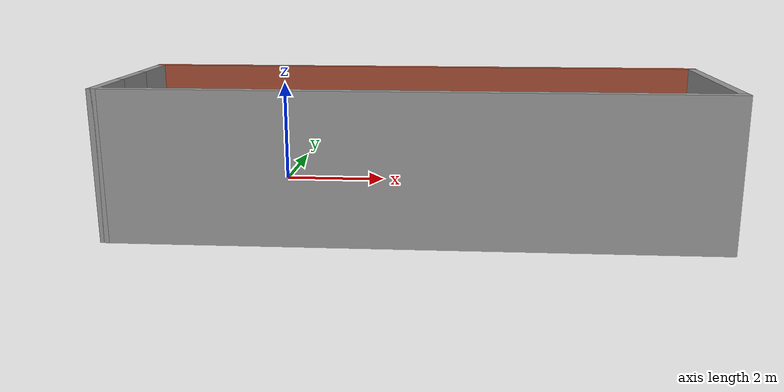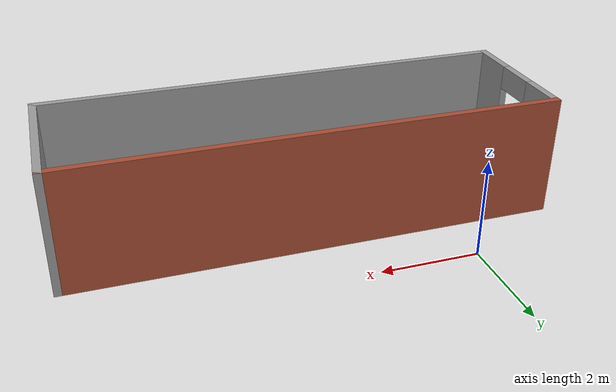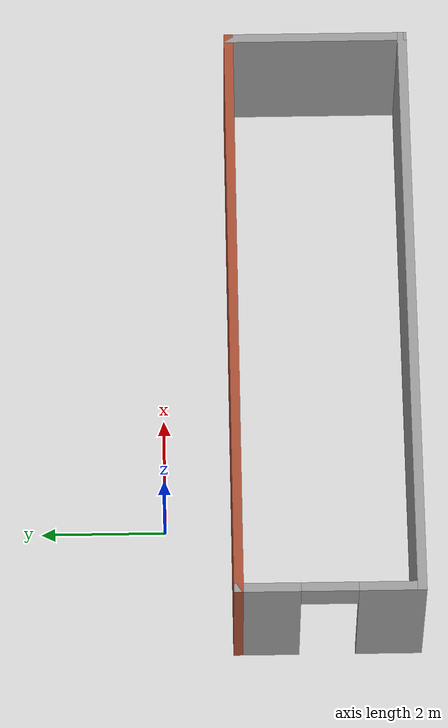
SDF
<?xml version='1.0'?>
<sdf version='1.7'>
  <model name='Untitled'>
    <pose>2.855 -2.0325 0 0 -0 0</pose>
    <link name='Wall_0'>
      <pose>-4.925 -0.5325 0 0 -0 -1.5708</pose>
      <visual name='Wall_0_Visual_0'>
        <pose>-0.9775 0 1.25 0 -0 0</pose>
        <geometry>
          <box>
            <size>1.045 0.15 2.5</size>
          </box>
        </geometry>
        <material>
          <script>
            <uri>file://media/materials/scripts/gazebo.material</uri>
            <name>Gazebo/Grey</name>
          </script>
          <ambient>1 1 1 1</ambient>
        </material>
        <meta>
          <layer>0</layer>
        </meta>
      </visual>
      <collision name='Wall_0_Collision_0'>
        <geometry>
          <box>
            <size>1.045 0.15 2.5</size>
          </box>
        </geometry>
        <pose>-0.9775 0 1.25 0 -0 0</pose>
      </collision>
      <visual name='Wall_0_Visual_1'>
        <pose>0.9725 0 1.25 0 -0 0</pose>
        <geometry>
          <box>
            <size>1.055 0.15 2.5</size>
          </box>
        </geometry>
        <material>
          <script>
            <uri>file://media/materials/scripts/gazebo.material</uri>
            <name>Gazebo/Grey</name>
          </script>
          <ambient>1 1 1 1</ambient>
        </material>
        <meta>
          <layer>0</layer>
        </meta>
      </visual>
      <collision name='Wall_0_Collision_1'>
        <geometry>
          <box>
            <size>1.055 0.15 2.5</size>
          </box>
        </geometry>
        <pose>0.9725 0 1.25 0 -0 0</pose>
      </collision>
      <visual name='Wall_0_Visual_2'>
        <pose>-0.005 0 2.25 0 -0 0</pose>
        <geometry>
          <box>
            <size>0.9 0.15 0.5</size>
          </box>
        </geometry>
        <material>
          <script>
            <uri>file://media/materials/scripts/gazebo.material</uri>
            <name>Gazebo/Grey</name>
          </script>
          <ambient>1 1 1 1</ambient>
        </material>
        <meta>
          <layer>0</layer>
        </meta>
      </visual>
      <collision name='Wall_0_Collision_2'>
        <geometry>
          <box>
            <size>0.9 0.15 0.5</size>
          </box>
        </geometry>
        <pose>-0.005 0 2.25 0 -0 0</pose>
      </collision>
    </link>
    <link name='Wall_3'>
      <collision name='Wall_3_Collision'>
        <geometry>
          <box>
            <size>10 0.15 2.5</size>
          </box>
        </geometry>
        <pose>0 0 1.25 0 -0 0</pose>
      </collision>
      <visual name='Wall_3_Visual'>
        <pose>0 0 1.25 0 -0 0</pose>
        <geometry>
          <box>
            <size>10 0.15 2.5</size>
          </box>
        </geometry>
        <material>
          <script>
            <uri>file://media/materials/scripts/gazebo.material</uri>
            <name>Gazebo/Grey</name>
          </script>
          <ambient>1 1 1 1</ambient>
        </material>
        <meta>
          <layer>0</layer>
        </meta>
      </visual>
      <pose>-0 -1.9575 0 0 -0 0</pose>
    </link>
    <link name='Wall_4'>
      <collision name='Wall_4_Collision'>
        <geometry>
          <box>
            <size>3 0.15 2.5</size>
          </box>
        </geometry>
        <pose>0 0 1.25 0 -0 0</pose>
      </collision>
      <visual name='Wall_4_Visual'>
        <pose>0 0 1.25 0 -0 0</pose>
        <geometry>
          <box>
            <size>3 0.15 2.5</size>
          </box>
        </geometry>
        <material>
          <script>
            <uri>file://media/materials/scripts/gazebo.material</uri>
            <name>Gazebo/Grey</name>
          </script>
          <ambient>1 1 1 1</ambient>
        </material>
        <meta>
          <layer>0</layer>
        </meta>
      </visual>
      <pose>4.925 -0.5325 0 0 -0 1.5708</pose>
    </link>
    <link name='Wall_5'>
      <collision name='Wall_5_Collision'>
        <geometry>
          <box>
            <size>10 0.15 2.5</size>
          </box>
        </geometry>
        <pose>0 0 1.25 0 -0 0</pose>
      </collision>
      <visual name='Wall_5_Visual'>
        <pose>0 0 1.25 0 -0 0</pose>
        <geometry>
          <box>
            <size>10 0.15 2.5</size>
          </box>
        </geometry>
        <material>
          <script>
            <uri>file://media/materials/scripts/gazebo.material</uri>
            <name>Gazebo/Bricks</name>
          </script>
          <ambient>1 1 1 1</ambient>
        </material>
        <meta>
          <layer>0</layer>
        </meta>
      </visual>
      <pose>-0 0.8925 0 0 -0 3.14159</pose>
    </link>
    <static>1</static>
  </model>
</sdf>
